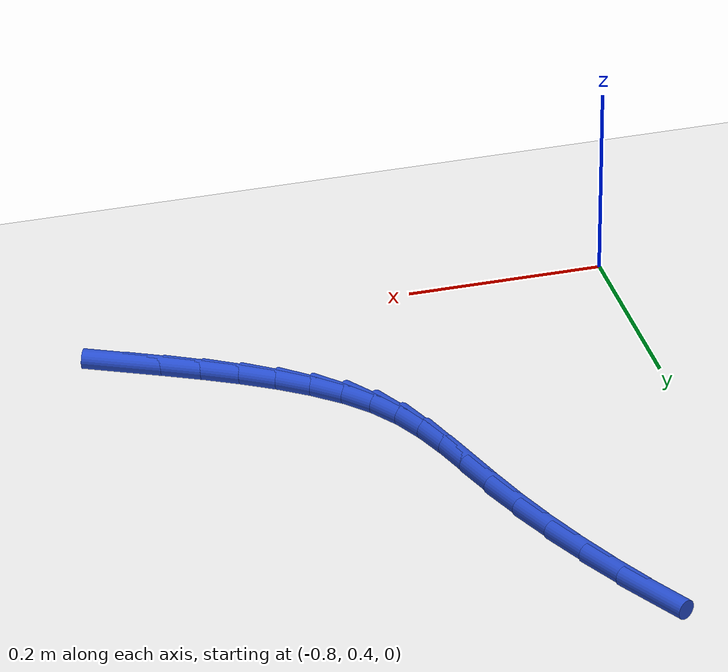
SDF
<sdf version="1.6">
 <world name="default">
  <model name="ground_plane">
   <static>1</static>
   <link name="link">
    <collision name="collision">
     <geometry><plane><normal>0 0 1</normal><size>100 100</size></plane></geometry>
     <surface><friction><ode><mu>100</mu><mu2>50</mu2></ode></friction></surface>
    </collision>
    <visual name="visual">
     <cast_shadows>0</cast_shadows>
     <geometry><plane><normal>0 0 1</normal><size>100 100</size></plane></geometry>
     <material>
      <script><uri>file://media/materials/scripts/gazebo.material</uri><name>Gazebo/WhiteGlow</name></script>
     </material>
    </visual>
   </link>
  </model>
  <model name="line">
   <link name="link_16">
    <pose>-0.2894157300056566 0.46257151065322594 0.01 0 1.57 -0.435547755946695</pose>
    <collision name="collision">
     <geometry><cylinder><radius>0.01</radius><length>0.08</length></cylinder></geometry>
    </collision>
    <visual name="visual">
     <material>
      <script><name>Gazebo/Blue</name><uri>file://media/materials/scripts/gazebo.material</uri></script>
     </material>
     <geometry><cylinder><radius>0.01</radius><length>0.08</length></cylinder></geometry>
    </visual>
   </link>
   <link name="link_17">
    <pose>-0.32590953882490536 0.47955400873731874 0.01 0 1.57 -0.4510450703834946</pose>
    <collision name="collision">
     <geometry><cylinder><radius>0.01</radius><length>0.08</length></cylinder></geometry>
    </collision>
    <visual name="visual">
     <material>
      <script><name>Gazebo/Blue</name><uri>file://media/materials/scripts/gazebo.material</uri></script>
     </material>
     <geometry><cylinder><radius>0.01</radius><length>0.08</length></cylinder></geometry>
    </visual>
   </link>
   <link name="link_18">
    <pose>-0.361681557198083 0.4968799943309711 0.01 0 1.57 -0.48262662591067285</pose>
    <collision name="collision">
     <geometry><cylinder><radius>0.01</radius><length>0.08</length></cylinder></geometry>
    </collision>
    <visual name="visual">
     <material>
      <script><name>Gazebo/Blue</name><uri>file://media/materials/scripts/gazebo.material</uri></script>
     </material>
     <geometry><cylinder><radius>0.01</radius><length>0.08</length></cylinder></geometry>
    </visual>
   </link>
   <link name="link_19">
    <pose>-0.396130846433768 0.5149298357968131 0.01 0 1.57 -0.5322115278446409</pose>
    <collision name="collision">
     <geometry><cylinder><radius>0.01</radius><length>0.08</length></cylinder></geometry>
    </collision>
    <visual name="visual">
     <material>
      <script><name>Gazebo/Blue</name><uri>file://media/materials/scripts/gazebo.material</uri></script>
     </material>
     <geometry><cylinder><radius>0.01</radius><length>0.08</length></cylinder></geometry>
    </visual>
   </link>
   <link name="link_20">
    <pose>-0.4286564678405386 0.5340839014974743 0.01 0 1.57 -0.6025806372912285</pose>
    <collision name="collision">
     <geometry><cylinder><radius>0.01</radius><length>0.08</length></cylinder></geometry>
    </collision>
    <visual name="visual">
     <material>
      <script><name>Gazebo/Blue</name><uri>file://media/materials/scripts/gazebo.material</uri></script>
     </material>
     <geometry><cylinder><radius>0.01</radius><length>0.08</length></cylinder></geometry>
    </visual>
   </link>
   <link name="link_21">
    <pose>-0.4586574827269732 0.5547225597955846 0.01 0 1.57 -0.6970919447280229</pose>
    <collision name="collision">
     <geometry><cylinder><radius>0.01</radius><length>0.08</length></cylinder></geometry>
    </collision>
    <visual name="visual">
     <material>
      <script><name>Gazebo/Blue</name><uri>file://media/materials/scripts/gazebo.material</uri></script>
     </material>
     <geometry><cylinder><radius>0.01</radius><length>0.08</length></cylinder></geometry>
    </visual>
   </link>
   <link name="link_22">
    <pose>-0.48553295240165034 0.5772261790537738 0.01 0 1.57 -0.8187893346411759</pose>
    <collision name="collision">
     <geometry><cylinder><radius>0.01</radius><length>0.08</length></cylinder></geometry>
    </collision>
    <visual name="visual">
     <material>
      <script><name>Gazebo/Blue</name><uri>file://media/materials/scripts/gazebo.material</uri></script>
     </material>
     <geometry><cylinder><radius>0.01</radius><length>0.08</length></cylinder></geometry>
    </visual>
   </link>
   <link name="link_23">
    <pose>-0.5086819381731484 0.6019751276346721 0.01 0 1.57 -0.9670127684586959</pose>
    <collision name="collision">
     <geometry><cylinder><radius>0.01</radius><length>0.08</length></cylinder></geometry>
    </collision>
    <visual name="visual">
     <material>
      <script><name>Gazebo/Blue</name><uri>file://media/materials/scripts/gazebo.material</uri></script>
     </material>
     <geometry><cylinder><radius>0.01</radius><length>0.08</length></cylinder></geometry>
    </visual>
   </link>
   <link name="link_24">
    <pose>-0.5275546866714497 0.6293386090940043 0.01 0 1.57 -1.1075245304353976</pose>
    <collision name="collision">
     <geometry><cylinder><radius>0.01</radius><length>0.08</length></cylinder></geometry>
    </collision>
    <visual name="visual">
     <material>
      <script><name>Gazebo/Blue</name><uri>file://media/materials/scripts/gazebo.material</uri></script>
     </material>
     <geometry><cylinder><radius>0.01</radius><length>0.08</length></cylinder></geometry>
    </visual>
   </link>
   <link name="link_25">
    <pose>-0.5426047246696288 0.6594669863362863 0.01 0 1.57 -1.2045844939877883</pose>
    <collision name="collision">
     <geometry><cylinder><radius>0.01</radius><length>0.08</length></cylinder></geometry>
    </collision>
    <visual name="visual">
     <material>
      <script><name>Gazebo/Blue</name><uri>file://media/materials/scripts/gazebo.material</uri></script>
     </material>
     <geometry><cylinder><radius>0.01</radius><length>0.08</length></cylinder></geometry>
    </visual>
   </link>
   <link name="link_26">
    <pose>-0.5552007788361379 0.6923109941337802 0.01 0 1.57 -1.2564160436212048</pose>
    <collision name="collision">
     <geometry><cylinder><radius>0.01</radius><length>0.08</length></cylinder></geometry>
    </collision>
    <visual name="visual">
     <material>
      <script><name>Gazebo/Blue</name><uri>file://media/materials/scripts/gazebo.material</uri></script>
     </material>
     <geometry><cylinder><radius>0.01</radius><length>0.08</length></cylinder></geometry>
    </visual>
   </link>
   <link name="link_27">
    <pose>-0.5667450984718043 0.7278140551288811 0.01 0 1.57 -1.2682257820648055</pose>
    <collision name="collision">
     <geometry><cylinder><radius>0.01</radius><length>0.08</length></cylinder></geometry>
    </collision>
    <visual name="visual">
     <material>
      <script><name>Gazebo/Blue</name><uri>file://media/materials/scripts/gazebo.material</uri></script>
     </material>
     <geometry><cylinder><radius>0.01</radius><length>0.08</length></cylinder></geometry>
    </visual>
   </link>
   <link name="link_28">
    <pose>-0.578639932877455 0.7659195919639842 0.01 0 1.57 -1.246910897992243</pose>
    <collision name="collision">
     <geometry><cylinder><radius>0.01</radius><length>0.08</length></cylinder></geometry>
    </collision>
    <visual name="visual">
     <material>
      <script><name>Gazebo/Blue</name><uri>file://media/materials/scripts/gazebo.material</uri></script>
     </material>
     <geometry><cylinder><radius>0.01</radius><length>0.08</length></cylinder></geometry>
    </visual>
   </link>
   <link name="link_29">
    <pose>-0.592286793812349 0.8065706850600511 0.01 0 1.57 -1.206390463391345</pose>
    <collision name="collision">
     <geometry><cylinder><radius>0.01</radius><length>0.08</length></cylinder></geometry>
    </collision>
    <visual name="visual">
     <material>
      <script><name>Gazebo/Blue</name><uri>file://media/materials/scripts/gazebo.material</uri></script>
     </material>
     <geometry><cylinder><radius>0.01</radius><length>0.08</length></cylinder></geometry>
    </visual>
   </link>
   <link name="link_30">
    <pose>-0.6086678498791283 0.8495158383934366 0.01 0 1.57 -1.1674212371771375</pose>
    <collision name="collision">
     <geometry><cylinder><radius>0.01</radius><length>0.08</length></cylinder></geometry>
    </collision>
    <visual name="visual">
     <material>
      <script><name>Gazebo/Blue</name><uri>file://media/materials/scripts/gazebo.material</uri></script>
     </material>
     <geometry><cylinder><radius>0.01</radius><length>0.08</length></cylinder></geometry>
    </visual>
   </link>
   <link name="link_31">
    <pose>-0.6276459289143288 0.8939841785686773 0.01 0 1.57 -1.1307141311978097</pose>
    <collision name="collision">
     <geometry><cylinder><radius>0.01</radius><length>0.08</length></cylinder></geometry>
    </collision>
    <visual name="visual">
     <material>
      <script><name>Gazebo/Blue</name><uri>file://media/materials/scripts/gazebo.material</uri></script>
     </material>
     <geometry><cylinder><radius>0.01</radius><length>0.08</length></cylinder></geometry>
    </visual>
   </link>
   <link name="link_32">
    <pose>-0.6488991064256552 0.9391191065722582 0.01 0 1.57 -1.0941712352187705</pose>
    <collision name="collision">
     <geometry><cylinder><radius>0.01</radius><length>0.08</length></cylinder></geometry>
    </collision>
    <visual name="visual">
     <material>
      <script><name>Gazebo/Blue</name><uri>file://media/materials/scripts/gazebo.material</uri></script>
     </material>
     <geometry><cylinder><radius>0.01</radius><length>0.08</length></cylinder></geometry>
    </visual>
   </link>
   <link name="link_33">
    <pose>-0.672105457920811 0.9840640233906636 0.01 0 1.57 -1.055904627514674</pose>
    <collision name="collision">
     <geometry><cylinder><radius>0.01</radius><length>0.08</length></cylinder></geometry>
    </collision>
    <visual name="visual">
     <material>
      <script><name>Gazebo/Blue</name><uri>file://media/materials/scripts/gazebo.material</uri></script>
     </material>
     <geometry><cylinder><radius>0.01</radius><length>0.08</length></cylinder></geometry>
    </visual>
   </link>
  </model>
 </world>
</sdf>
